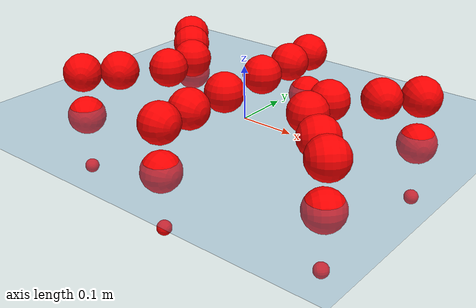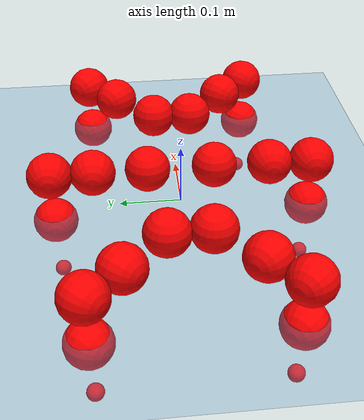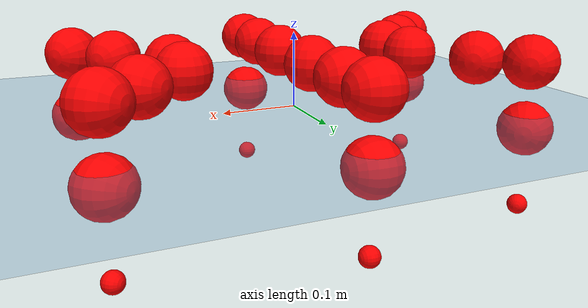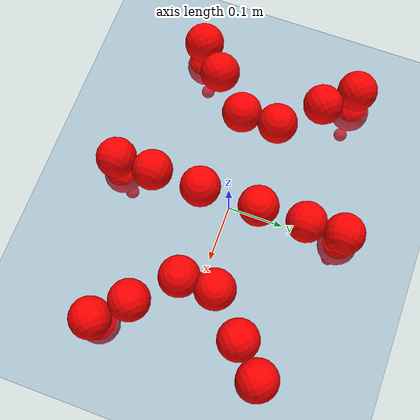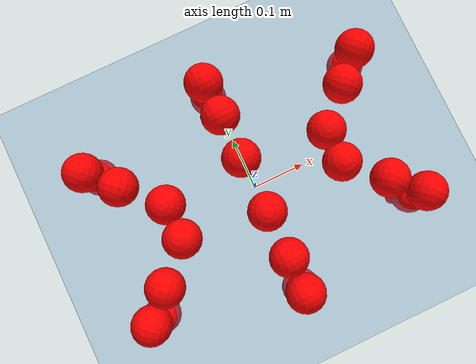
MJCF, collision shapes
<mujoco model="Golem">
  <compiler angle="radian" assetdir="assets" balanceinertia="true" inertiafromgeom="false"/>

  <option timestep="0.005" density="1.2" viscosity="2e-05"/>

  <size nkey="1"/>

  <visual>
    <quality shadowsize="8192"/>
    <map shadowclip="0.5"/>
  </visual>

  <default>
    <default class="/">
      <joint armature="0.01" damping="0.01" frictionloss="0.01"/>
      <geom contype="0" conaffinity="0" group="1" solref="-1000 -80"/>
      <site size="0.01 0.005 0.005" group="5"/>
      <general forcelimited="true" biastype="affine" gainprm="25" biasprm="0 -25 -0.5"/>
      <default class="visual">
        <geom type="mesh" group="2"/>
      </default>
      <default class="collision">
        <geom group="3"/>
      </default>
      <default class="foot">
        <geom size="0.01 0 0" condim="6" group="4" priority="1" solimp="0.015 1 0.01"/>
      </default>
      <default class="reward_collision_sphere">
        <geom group="5" rgba="1 0 0 1"/>
      </default>
    </default>
  </default>

  <asset>
    <texture type="skybox" colorspace="auto" name="//unnamed_texture_0" builtin="gradient" rgb1="0.95 0.95 0.95" rgb2="0.95 0.95 0.95" width="100" height="600"/>
    <texture type="2d" colorspace="auto" name="texplane" builtin="checker" rgb1="0.345 0.575 0.748" rgb2="0.345 0.575 0.748" markrgb="1 1 1" width="512" height="512"/>
    <material name="MatPlane" class="/" texture="texplane" texuniform="true" texrepeat="2 2" specular="0.9"/>
    <mesh name="body" class="/" file="body.stl" scale="0.001 0.001 0.001"/>
    <mesh name="coxa" class="/" file="coxa.stl" scale="0.001 0.001 0.001"/>
    <mesh name="femur" class="/" file="femur.stl" scale="0.001 0.001 0.001"/>
    <mesh name="tibia" class="/" file="tibia.stl" scale="0.001 0.001 0.001"/>
    <mesh name="tarsus" class="/" file="tarsus.stl" scale="0.001 0.001 0.001"/>
  </asset>

  <worldbody>
    <geom name="floor" class="/" size="100 100 0.125" type="plane" group="0" material="MatPlane"/>
    <light name="toplight_shadow" class="/" pos="0 0 5" dir="0.0990148 0.0990148 -0.990148" type="directional" ambient="0.04 0.04 0.04" diffuse="0.55 0.55 0.55" specular="0.12 0.12 0.12"/>
    <light name="toplight_fill" class="/" pos="0 0 5" dir="0.0990148 0.0990148 -0.990148" type="directional" castshadow="false" ambient="0.04 0.04 0.04" diffuse="0.3 0.3 0.3" specular="0.08 0.08 0.08"/>
    <body name="trunk" pos="-0.000326648 0.000419219 -0.00043934" quat="1 -7.78426e-05 -1.56217e-05 0.000202505">
      <inertial pos="-0.0006225 -0.000321268 -0.0029309" quat="0.999993 0.000650728 0.00335847 0.00178953" mass="2.66807" diaginertia="0.0102366 0.00103447 0.0127813"/>
      <joint name="//unnamed_joint_0" type="free"/>
      <geom name="//unnamed_geom_1" class="/" pos="0 0 0.0672446" quat="1 0 0 0" type="mesh" rgba="0.9 0.9 0.9 1" mesh="body"/>
      <site name="imu" class="/" pos="0.129073 0.00137607 0.104448" size="0.00895738"/>
      <camera name="track" class="/" pos="0 -1.26769 0" quat="0.707107 0.707107 0 0" mode="trackcom"/>
      <camera name="ego_camera" class="/" pos="0.130348 0 0.10507" quat="-0.5 -0.5 0.5 0.5"/>
      <body name="coxa_RR" pos="-0.177201 -0.0532059 0.0695254" quat="0.382714 0.000108176 -7.26974e-05 -0.923867">
        <inertial pos="0.000280273 0.000821853 0.00139118" quat="1 -0.000425887 6.6756e-05 0.000188769" mass="0.145338" diaginertia="0.0102512 0.00104269 0.0128783"/>
        <joint name="coxa_joint_RR" class="/" pos="0 0 0" axis="0.000358651 -0.00142232 -0.999999" range="-3.12098 3.13827" armature="0.00914179" damping="0" frictionloss="0.00891801"/>
        <geom name="//unnamed_geom_2" class="/" type="mesh" rgba="0.2 0.2 0.2 1" mesh="coxa"/>
        <geom name="//unnamed_geom_3" class="reward_collision_sphere" size="0.0358295" pos="-0.0300802 0 0"/>
        <body name="femur_RR" pos="0.0593302 0.00132036 -0.00144862" quat="0.499899 -0.500403 0.500053 0.499644">
          <inertial pos="0.000444365 -8.34683e-05 0.000902355" quat="1 1.52163e-05 -2.12948e-05 0.000144468" mass="0.143441" diaginertia="0.0101963 0.00102886 0.0127337"/>
          <joint name="femur_joint_RR" class="/" pos="0 0 0" axis="0.000124775 0.000357347 -1" range="-3.14066 3.14013" armature="0.00898005" damping="0.000166583" frictionloss="0.00874241"/>
          <geom name="//unnamed_geom_4" class="/" type="mesh" rgba="0.9 0.9 0.9 1" mesh="femur"/>
          <geom name="//unnamed_geom_5" class="reward_collision_sphere" size="0.0358295"/>
          <body name="tibia_RR" pos="0.00151526 -0.0675487 0.000256978" quat="-1.89917e-05 1 2.65043e-05 -1.9799e-05">
            <inertial pos="0.000296199 -0.000126412 -0.000350855" quat="0.999998 0.00080622 0.000133903 0.00180271" mass="0.143582" diaginertia="0.010098 0.001022 0.0128921"/>
            <joint name="tibia_joint_RR" class="/" pos="0 0 0" axis="0.00395319 0.000498724 0.999992" range="-3.15689 3.12981" armature="0.00884035" damping="0.000741375" frictionloss="0.00903297"/>
            <geom name="//unnamed_geom_6" class="/" type="mesh" rgba="0.2 0.2 0.2 1" mesh="tibia"/>
            <geom name="//unnamed_geom_7" class="reward_collision_sphere" size="0.0358295"/>
            <body name="tarsus_RR" pos="0.0855401 -0.000458678 -0.00031644" quat="1 4.41485e-05 0.000330983 -0.000312132">
              <inertial pos="0.0598633 0.00031689 0.000781696" quat="0.499839 0.499955 0.500425 0.499782" mass="0.1419" diaginertia="0.0100652 0.00101057 0.0127501"/>
              <joint name="tarsus_joint_RR" class="/" pos="0 0 0" axis="0.00199598 0.00166718 0.999997" range="-3.12155 3.13056" armature="0.0088455" damping="0.00825493" frictionloss="0.00867108"/>
              <geom name="//unnamed_geom_8" class="/" type="mesh" rgba="0.9 0.9 0.9 1" mesh="tarsus"/>
              <geom name="foot_1" class="foot" size="0.00851877" pos="0.112299 0 0" quat="0 -0.707107 0 0.707107"/>
              <geom name="//unnamed_geom_10" class="reward_collision_sphere" size="0.0358295"/>
              <geom name="//unnamed_geom_11" class="reward_collision_sphere" size="0.0134361" pos="0.107787 0 0"/>
              <site name="foot_1" class="foot" pos="0.112299 0 0" quat="0 -0.707107 0 0.707107" size="0.00895738"/>
            </body>
          </body>
        </body>
      </body>
      <body name="coxa_RM" pos="-0.000943971 -0.0833548 0.068239" quat="0.707289 -0.000310572 -3.94638e-05 -0.706925">
        <inertial pos="-0.000624727 0.000260914 0.000667978" quat="1 0.000226106 -0.000161698 0.000235202" mass="0.142991" diaginertia="0.0100902 0.0010155 0.012842"/>
        <joint name="coxa_joint_RM" class="/" pos="0 0 0" axis="0.000105439 -0.000581163 -1" range="-3.14421 3.13857" armature="0.00860549" damping="0.00819641" frictionloss="0.00890912"/>
        <geom name="//unnamed_geom_12" class="/" type="mesh" rgba="0.2 0.2 0.2 1" mesh="coxa"/>
        <geom name="//unnamed_geom_13" class="reward_collision_sphere" size="0.0358295" pos="-0.0300802 0 0"/>
        <body name="femur_RM" pos="0.0585358 -0.000577392 -0.000333826" quat="0.49996 -0.499891 0.50028 0.499868">
          <inertial pos="0.000301283 0.000693558 0.000215108" quat="1 5.61317e-05 -6.39195e-05 0.000113145" mass="0.143679" diaginertia="0.010148 0.0010215 0.0127599"/>
          <joint name="femur_joint_RM" class="/" pos="0 0 0" axis="0.000334113 -0.00464584 -0.999989" range="-3.13611 3.13816" armature="0.00910471" damping="0.00265169" frictionloss="0.00930819"/>
          <geom name="//unnamed_geom_14" class="/" type="mesh" rgba="0.9 0.9 0.9 1" mesh="femur"/>
          <geom name="//unnamed_geom_15" class="reward_collision_sphere" size="0.0358295"/>
          <body name="tibia_RM" pos="0.000887285 -0.0676331 -0.000435184" quat="-0.000144266 1 0.000269399 -0.000277225">
            <inertial pos="0.00104774 -0.000393212 -0.00030336" quat="0.999991 -0.00356916 -0.00231361 0.000809954" mass="0.146102" diaginertia="0.0102314 0.00103419 0.0129836"/>
            <joint name="tibia_joint_RM" class="/" pos="0 0 0" axis="-0.000131926 -1.84077e-07 1" range="-3.14255 3.12074" armature="0.00885736" damping="0.00704682" frictionloss="0.00900382"/>
            <geom name="//unnamed_geom_16" class="/" type="mesh" rgba="0.2 0.2 0.2 1" mesh="tibia"/>
            <geom name="//unnamed_geom_17" class="reward_collision_sphere" size="0.0358295"/>
            <body name="tarsus_RM" pos="0.0870088 0.000946844 0.000641374" quat="1 8.06147e-06 -1.27623e-05 5.57105e-06">
              <inertial pos="0.0599049 9.91228e-05 0.00040223" quat="0.500147 0.50015 0.500378 0.499324" mass="0.145269" diaginertia="0.0101368 0.00103185 0.0129437"/>
              <joint name="tarsus_joint_RM" class="/" pos="0 0 0" axis="0.00023517 -0.00156437 0.999999" range="-3.12537 3.14831" armature="0.00897577" damping="0.00574776" frictionloss="0.0092681"/>
              <geom name="//unnamed_geom_18" class="/" type="mesh" rgba="0.9 0.9 0.9 1" mesh="tarsus"/>
              <geom name="foot_2" class="foot" size="0.00868972" pos="0.112299 0 0" quat="0 -0.707107 0 0.707107"/>
              <geom name="//unnamed_geom_20" class="reward_collision_sphere" size="0.0358295"/>
              <geom name="//unnamed_geom_21" class="reward_collision_sphere" size="0.0134361" pos="0.107787 0 0"/>
              <site name="foot_2" class="foot" pos="0.112299 0 0" quat="0 -0.707107 0 0.707107" size="0.00895738"/>
            </body>
          </body>
        </body>
      </body>
      <body name="coxa_RF" pos="0.178442 -0.0523422 0.0674608" quat="0.923892 8.63564e-06 4.93501e-07 -0.382654">
        <inertial pos="-0.000226902 -0.000199508 -0.000513889" quat="1 -8.75694e-05 -0.000123378 1.14118e-05" mass="0.146263" diaginertia="0.0102632 0.00103382 0.0129286"/>
        <joint name="coxa_joint_RF" class="/" pos="0 0 0" axis="-0.0022156 -0.00555683 -0.999982" stiffness="0.00103596" range="-3.13397 3.12434" armature="0.00915333" damping="0.00281237" frictionloss="0.00893903"/>
        <geom name="//unnamed_geom_22" class="/" type="mesh" rgba="0.2 0.2 0.2 1" mesh="coxa"/>
        <geom name="//unnamed_geom_23" class="reward_collision_sphere" size="0.0358295" pos="-0.0300802 0 0"/>
        <body name="femur_RF" pos="0.0595912 0.000819072 -3.18732e-05" quat="0.499982 -0.499992 0.500004 0.500022">
          <inertial pos="0.000964574 -9.59899e-05 -0.000202948" quat="0.999999 -0.0011471 -0.000845477 0.000268286" mass="0.144577" diaginertia="0.0102666 0.00103145 0.0128499"/>
          <joint name="femur_joint_RF" class="/" pos="0 0 0" axis="2.62407e-05 0.000457183 -1" range="-3.13322 3.15099" armature="0.00894738" damping="0.00890956" frictionloss="0.00923936"/>
          <geom name="//unnamed_geom_24" class="/" type="mesh" rgba="0.9 0.9 0.9 1" mesh="femur"/>
          <geom name="//unnamed_geom_25" class="reward_collision_sphere" size="0.0358295"/>
          <body name="tibia_RF" pos="-0.000361247 -0.0682016 -0.000474802" quat="-3.37409e-05 1 4.70675e-05 -7.13445e-05">
            <inertial pos="2.65405e-06 9.81959e-05 -0.000595608" quat="0.999999 -0.00138788 0.000346434 -0.000562306" mass="0.142956" diaginertia="0.0100485 0.00102051 0.012668"/>
            <joint name="tibia_joint_RF" class="/" pos="0 0 0" axis="-3.92992e-06 -6.36e-05 1" range="-3.1382 3.12244" armature="0.00905366" damping="0.00733758" frictionloss="0.00858906"/>
            <geom name="//unnamed_geom_26" class="/" type="mesh" rgba="0.2 0.2 0.2 1" mesh="tibia"/>
            <geom name="//unnamed_geom_27" class="reward_collision_sphere" size="0.0358295"/>
            <body name="tarsus_RF" pos="0.0873013 -0.000232219 0.00106667" quat="1 0.000285028 0.00011264 -0.000180006">
              <inertial pos="0.0601626 0.000561475 0.000314455" quat="0.50009 0.499937 0.500016 0.499956" mass="0.142252" diaginertia="0.00999282 0.00101328 0.0125905"/>
              <joint name="tarsus_joint_RF" class="/" pos="0 0 0" axis="0.0033956 0.00108784 0.999994" stiffness="0.0241272" range="-3.15303 3.13775" armature="0.00917977" damping="0" frictionloss="0.00915185"/>
              <geom name="//unnamed_geom_28" class="/" type="mesh" rgba="0.9 0.9 0.9 1" mesh="tarsus"/>
              <geom name="foot_3" class="foot" size="0.00887029" pos="0.112299 0 0" quat="0 -0.707107 0 0.707107"/>
              <geom name="//unnamed_geom_30" class="reward_collision_sphere" size="0.0358295"/>
              <geom name="//unnamed_geom_31" class="reward_collision_sphere" size="0.0134361" pos="0.107787 0 0"/>
              <site name="foot_3" class="foot" pos="0.112299 0 0" quat="0 -0.707107 0 0.707107" size="0.00895738"/>
            </body>
          </body>
        </body>
      </body>
      <body name="coxa_LR" pos="-0.178492 0.0557368 0.0690047" quat="0.382696 3.28423e-05 -1.71073e-05 0.923874">
        <inertial pos="0.000956592 0.000319382 0.000756643" quat="0.999994 0.00174995 0.0018568 0.00254447" mass="0.145854" diaginertia="0.0103274 0.00104344 0.0128247"/>
        <joint name="coxa_joint_LR" class="/" pos="0 0 0" axis="-0.000134152 -0.000305137 -1" range="-3.12262 3.12746" armature="0.00880473" damping="0.00968105" frictionloss="0.00882582"/>
        <geom name="//unnamed_geom_32" class="/" type="mesh" rgba="0.2 0.2 0.2 1" mesh="coxa"/>
        <geom name="//unnamed_geom_33" class="reward_collision_sphere" size="0.0358295" pos="-0.0300802 0 0"/>
        <body name="femur_LR" pos="0.0601617 -0.00150084 -0.0011563" quat="0.499971 -0.500017 0.49999 0.500021">
          <inertial pos="-0.000231027 -0.00111171 0.000142979" quat="1 -0.000297667 6.24252e-05 0.000181907" mass="0.143408" diaginertia="0.0100914 0.00101193 0.0127152"/>
          <joint name="femur_joint_LR" class="/" pos="0 0 0" axis="0.00105551 -0.00066084 0.999999" range="-3.14238 3.14054" armature="0.00897543" damping="0" frictionloss="0.00896528"/>
          <geom name="//unnamed_geom_34" class="/" type="mesh" rgba="0.9 0.9 0.9 1" mesh="femur"/>
          <geom name="//unnamed_geom_35" class="reward_collision_sphere" size="0.0358295"/>
          <body name="tibia_LR" pos="0.000584286 -0.0686719 -0.00262531" quat="8.17285e-06 1 0.000203777 0.000286525">
            <inertial pos="-0.00104453 0.000707985 0.000593015" quat="0.999999 0.00129901 -0.000266599 -0.000726541" mass="0.14487" diaginertia="0.0102683 0.00104041 0.0128784"/>
            <joint name="tibia_joint_LR" class="/" pos="0 0 0" axis="-2.99238e-06 9.88077e-05 -1" range="-3.15518 3.13826" armature="0.00903564" damping="0.00508792" frictionloss="0.00898928"/>
            <geom name="//unnamed_geom_36" class="/" type="mesh" rgba="0.2 0.2 0.2 1" mesh="tibia"/>
            <geom name="//unnamed_geom_37" class="reward_collision_sphere" size="0.0358295"/>
            <body name="tarsus_LR" pos="0.0884127 0.000246683 0.000679936" quat="1 0.000158535 0.000428731 -2.00736e-05">
              <inertial pos="0.0606753 7.26074e-05 0.000209221" quat="0.500378 0.498641 0.500398 0.50058" mass="0.143716" diaginertia="0.0101017 0.00103372 0.0128436"/>
              <joint name="tarsus_joint_LR" class="/" pos="0 0 0" axis="0.000514077 -0.00299906 -0.999995" range="-3.12911 3.15585" armature="0.00930789" damping="0" frictionloss="0.00934507"/>
              <geom name="//unnamed_geom_38" class="/" type="mesh" rgba="0.9 0.9 0.9 1" mesh="tarsus"/>
              <geom name="foot_4" class="foot" size="0.00915353" pos="0.112299 0 0" quat="0.707107 0 -0.707107 0"/>
              <geom name="//unnamed_geom_40" class="reward_collision_sphere" size="0.0358295"/>
              <geom name="//unnamed_geom_41" class="reward_collision_sphere" size="0.0134361" pos="0.107787 0 0"/>
              <site name="foot_4" class="foot" pos="0.112299 0 0" quat="0.707107 0 -0.707107 0" size="0.00895738"/>
            </body>
          </body>
        </body>
      </body>
      <body name="coxa_LM" pos="-0.00177015 0.0825607 0.068372" quat="0.707008 -0.000100845 -0.000116237 0.707206">
        <inertial pos="-3.38623e-05 0.000779914 0.000312965" quat="0.999999 0.00081796 -0.00103772 -0.000204197" mass="0.145713" diaginertia="0.0102248 0.00103049 0.0128776"/>
        <joint name="coxa_joint_LM" class="/" pos="0 0 0" axis="-0.00248819 0.0045802 -0.999986" range="-3.13987 3.14834" armature="0.00905942" damping="0.00828204" frictionloss="0.00856487"/>
        <geom name="//unnamed_geom_42" class="/" type="mesh" rgba="0.2 0.2 0.2 1" mesh="coxa"/>
        <geom name="//unnamed_geom_43" class="reward_collision_sphere" size="0.0358295" pos="-0.0300802 0 0"/>
        <body name="femur_LM" pos="0.0555165 0.000827456 -0.000718461" quat="0.500058 -0.499984 0.500016 0.499942">
          <inertial pos="-0.000937376 -0.000399157 -0.000276108" quat="0.999993 -0.00349679 -0.00062979 -0.000789451" mass="0.141732" diaginertia="0.0100522 0.00101857 0.0126595"/>
          <joint name="femur_joint_LM" class="/" pos="0 0 0" axis="0.00260588 0.00207553 0.999994" range="-3.13348 3.13472" armature="0.00879967" damping="0.00108262" frictionloss="0.00933912"/>
          <geom name="//unnamed_geom_44" class="/" type="mesh" rgba="0.9 0.9 0.9 1" mesh="femur"/>
          <geom name="//unnamed_geom_45" class="reward_collision_sphere" size="0.0358295"/>
          <body name="tibia_LM" pos="-0.000272445 -0.0666199 0.00173897" quat="8.06532e-05 1 3.57026e-05 -8.49165e-05">
            <inertial pos="-0.000998924 -0.000259131 0.000297245" quat="1 -0.000444521 -0.000310215 0.000247341" mass="0.143754" diaginertia="0.0101238 0.00102619 0.0127014"/>
            <joint name="tibia_joint_LM" class="/" pos="0 0 0" axis="0.00200283 -0.00191853 -0.999996" range="-3.13808 3.13946" armature="0.00899886" damping="0.00269036" frictionloss="0.00921685"/>
            <geom name="//unnamed_geom_46" class="/" type="mesh" rgba="0.2 0.2 0.2 1" mesh="tibia"/>
            <geom name="//unnamed_geom_47" class="reward_collision_sphere" size="0.0358295"/>
            <body name="tarsus_LM" pos="0.0882015 -0.000390048 -0.00123516" quat="1 8.46969e-05 0.000114573 -5.81449e-05">
              <inertial pos="0.0610062 -0.000528307 -0.000907814" quat="0.499798 0.50024 0.500125 0.499838" mass="0.143482" diaginertia="0.0102387 0.00102703 0.01283"/>
              <joint name="tarsus_joint_LM" class="/" pos="0 0 0" axis="0.000192035 0.000160882 -1" range="-3.14093 3.14323" armature="0.00909098" damping="0.00516199" frictionloss="0.008893"/>
              <geom name="//unnamed_geom_48" class="/" type="mesh" rgba="0.9 0.9 0.9 1" mesh="tarsus"/>
              <geom name="foot_5" class="foot" size="0.00910346" pos="0.112299 0 0" quat="0.707107 0 -0.707107 0"/>
              <geom name="//unnamed_geom_50" class="reward_collision_sphere" size="0.0358295"/>
              <geom name="//unnamed_geom_51" class="reward_collision_sphere" size="0.0134361" pos="0.107787 0 0"/>
              <site name="foot_5" class="foot" pos="0.112299 0 0" quat="0.707107 0 -0.707107 0" size="0.00895738"/>
            </body>
          </body>
        </body>
      </body>
      <body name="coxa_LF" pos="0.178565 0.053178 0.0677133" quat="0.923839 -8.96386e-05 -0.000285552 0.382781">
        <inertial pos="9.69233e-05 0.000333767 -0.000222553" quat="0.999993 -0.000950188 0.00194529 -0.00309875" mass="0.145719" diaginertia="0.0101723 0.00102566 0.0129811"/>
        <joint name="coxa_joint_LF" class="/" pos="0 0 0" axis="0.00126824 0.00129774 -0.999998" stiffness="0.00109689" range="-3.14553 3.13851" armature="0.00922009" damping="0.00218894" frictionloss="0.0093146"/>
        <geom name="//unnamed_geom_52" class="/" type="mesh" rgba="0.2 0.2 0.2 1" mesh="coxa"/>
        <geom name="//unnamed_geom_53" class="reward_collision_sphere" size="0.0358295" pos="-0.0300802 0 0"/>
        <body name="femur_LF" pos="0.0598994 -0.000453809 -0.000368167" quat="0.500048 -0.50001 0.499956 0.499986">
          <inertial pos="-0.000677473 -0.000501166 0.000795134" quat="0.999999 -0.000968352 8.40336e-05 0.00101706" mass="0.144405" diaginertia="0.0101024 0.00102052 0.0127555"/>
          <joint name="femur_joint_LF" class="/" pos="0 0 0" axis="-0.00273064 -0.00152297 0.999995" range="-3.14318 3.14446" armature="0.00855122" damping="0.00389232" frictionloss="0.00916411"/>
          <geom name="//unnamed_geom_54" class="/" type="mesh" rgba="0.9 0.9 0.9 1" mesh="femur"/>
          <geom name="//unnamed_geom_55" class="reward_collision_sphere" size="0.0358295"/>
          <body name="tibia_LF" pos="0.000224978 -0.0693733 0.000294272" quat="-0.00036667 1 0.000385021 -7.53921e-05">
            <inertial pos="0.000305691 -0.000755922 -0.000215895" quat="1 -0.000196045 8.91046e-05 7.92664e-05" mass="0.141727" diaginertia="0.00996561 0.00101358 0.0126748"/>
            <joint name="tibia_joint_LF" class="/" pos="0 0 0" axis="0.000762407 0.000275055 -1" range="-3.1429 3.13945" armature="0.00853539" damping="0.000204519" frictionloss="0.00899649"/>
            <geom name="//unnamed_geom_56" class="/" type="mesh" rgba="0.2 0.2 0.2 1" mesh="tibia"/>
            <geom name="//unnamed_geom_57" class="reward_collision_sphere" size="0.0358295"/>
            <body name="tarsus_LF" pos="0.0887206 0.000324943 0.000252032" quat="1 8.81305e-05 0.000111974 -2.11812e-05">
              <inertial pos="0.0605598 -0.000617656 -0.000341066" quat="0.503406 0.499582 0.497231 0.499761" mass="0.14379" diaginertia="0.0100258 0.00102206 0.0126301"/>
              <joint name="tarsus_joint_LF" class="/" pos="0 0 0" axis="0.000708017 0.00289627 -0.999996" range="-3.12961 3.1356" armature="0.00863755" damping="0.0142423" frictionloss="0.00872787"/>
              <geom name="//unnamed_geom_58" class="/" type="mesh" rgba="0.9 0.9 0.9 1" mesh="tarsus"/>
              <geom name="foot_6" class="foot" size="0.00890175" pos="0.112299 0 0" quat="0.707107 0 -0.707107 0"/>
              <geom name="//unnamed_geom_60" class="reward_collision_sphere" size="0.0358295"/>
              <geom name="//unnamed_geom_61" class="reward_collision_sphere" size="0.0134361" pos="0.107787 0 0"/>
              <site name="foot_6" class="foot" pos="0.112299 0 0" quat="0.707107 0 -0.707107 0" size="0.00895738"/>
            </body>
          </body>
        </body>
      </body>
    </body>
  </worldbody>

  <contact>
    <pair class="/" geom1="floor" geom2="foot_1" name="//unnamed_contact_0"/>
    <pair class="/" geom1="floor" geom2="foot_2" name="//unnamed_contact_1"/>
    <pair class="/" geom1="floor" geom2="foot_3" name="//unnamed_contact_2"/>
    <pair class="/" geom1="floor" geom2="foot_4" name="//unnamed_contact_3"/>
    <pair class="/" geom1="floor" geom2="foot_5" name="//unnamed_contact_4"/>
    <pair class="/" geom1="floor" geom2="foot_6" name="//unnamed_contact_5"/>
  </contact>

  <actuator>
    <general name="coxa_joint_RR" class="/" joint="coxa_joint_RR" forcerange="-6.55048 6.55048" gainprm="21.254" biasprm="0 -21.254 -0.471254"/>
    <general name="femur_joint_RR" class="/" joint="femur_joint_RR" forcerange="-6.5833 6.5833" gainprm="21.254" biasprm="0 -21.254 -0.471254"/>
    <general name="tibia_joint_RR" class="/" joint="tibia_joint_RR" forcerange="-6.46874 6.46874" gainprm="21.254" biasprm="0 -21.254 -0.471254"/>
    <general name="tarsus_joint_RR" class="/" joint="tarsus_joint_RR" forcerange="-6.4813 6.4813" gainprm="21.254" biasprm="0 -21.254 -0.471254"/>
    <general name="coxa_joint_RM" class="/" joint="coxa_joint_RM" forcerange="-6.51082 6.51082" gainprm="21.254" biasprm="0 -21.254 -0.471254"/>
    <general name="femur_joint_RM" class="/" joint="femur_joint_RM" forcerange="-6.54634 6.54634" gainprm="21.254" biasprm="0 -21.254 -0.471254"/>
    <general name="tibia_joint_RM" class="/" joint="tibia_joint_RM" forcerange="-6.54128 6.54128" gainprm="21.254" biasprm="0 -21.254 -0.471254"/>
    <general name="tarsus_joint_RM" class="/" joint="tarsus_joint_RM" forcerange="-6.62689 6.62689" gainprm="21.254" biasprm="0 -21.254 -0.471254"/>
    <general name="coxa_joint_RF" class="/" joint="coxa_joint_RF" forcerange="-6.34791 6.34791" gainprm="21.254" biasprm="0 -21.254 -0.471254"/>
    <general name="femur_joint_RF" class="/" joint="femur_joint_RF" forcerange="-6.50633 6.50633" gainprm="21.254" biasprm="0 -21.254 -0.471254"/>
    <general name="tibia_joint_RF" class="/" joint="tibia_joint_RF" forcerange="-6.32445 6.32445" gainprm="21.254" biasprm="0 -21.254 -0.471254"/>
    <general name="tarsus_joint_RF" class="/" joint="tarsus_joint_RF" forcerange="-6.74762 6.74762" gainprm="21.254" biasprm="0 -21.254 -0.471254"/>
    <general name="coxa_joint_LR" class="/" joint="coxa_joint_LR" forcerange="-6.7522 6.7522" gainprm="21.254" biasprm="0 -21.254 -0.471254"/>
    <general name="femur_joint_LR" class="/" joint="femur_joint_LR" forcerange="-6.51407 6.51407" gainprm="21.254" biasprm="0 -21.254 -0.471254"/>
    <general name="tibia_joint_LR" class="/" joint="tibia_joint_LR" forcerange="-6.52785 6.52785" gainprm="21.254" biasprm="0 -21.254 -0.471254"/>
    <general name="tarsus_joint_LR" class="/" joint="tarsus_joint_LR" forcerange="-6.75459 6.75459" gainprm="21.254" biasprm="0 -21.254 -0.471254"/>
    <general name="coxa_joint_LM" class="/" joint="coxa_joint_LM" forcerange="-6.44058 6.44058" gainprm="21.254" biasprm="0 -21.254 -0.471254"/>
    <general name="femur_joint_LM" class="/" joint="femur_joint_LM" forcerange="-6.75684 6.75684" gainprm="21.254" biasprm="0 -21.254 -0.471254"/>
    <general name="tibia_joint_LM" class="/" joint="tibia_joint_LM" forcerange="-6.58479 6.58479" gainprm="21.254" biasprm="0 -21.254 -0.471254"/>
    <general name="tarsus_joint_LM" class="/" joint="tarsus_joint_LM" forcerange="-6.4237 6.4237" gainprm="21.254" biasprm="0 -21.254 -0.471254"/>
    <general name="coxa_joint_LF" class="/" joint="coxa_joint_LF" forcerange="-6.61234 6.61234" gainprm="21.254" biasprm="0 -21.254 -0.471254"/>
    <general name="femur_joint_LF" class="/" joint="femur_joint_LF" forcerange="-6.75192 6.75192" gainprm="21.254" biasprm="0 -21.254 -0.471254"/>
    <general name="tibia_joint_LF" class="/" joint="tibia_joint_LF" forcerange="-6.32847 6.32847" gainprm="21.254" biasprm="0 -21.254 -0.471254"/>
    <general name="tarsus_joint_LF" class="/" joint="tarsus_joint_LF" forcerange="-6.54866 6.54866" gainprm="21.254" biasprm="0 -21.254 -0.471254"/>
  </actuator>

  <sensor>
    <gyro site="imu" name="imu_angular_velocity"/>
    <velocimeter site="imu" name="imu_linear_velocity"/>
    <framelinvel objtype="site" objname="foot_1" name="foot_1_global_linear_velocity"/>
    <framelinvel objtype="site" objname="foot_2" name="foot_2_global_linear_velocity"/>
    <framelinvel objtype="site" objname="foot_3" name="foot_3_global_linear_velocity"/>
    <framelinvel objtype="site" objname="foot_4" name="foot_4_global_linear_velocity"/>
    <framelinvel objtype="site" objname="foot_5" name="foot_5_global_linear_velocity"/>
    <framelinvel objtype="site" objname="foot_6" name="foot_6_global_linear_velocity"/>
  </sensor>

  <keyframe>
    <key name="home" qpos="0 0 0.1457 1 0 0 0 0 0 0 0 0 0 0 0 0 0 0 0 0 0 0 0 0 0 0 0 0 0 0 0"/>
  </keyframe>
</mujoco>
